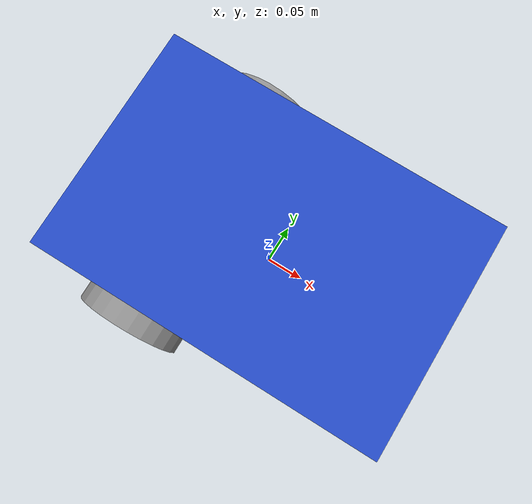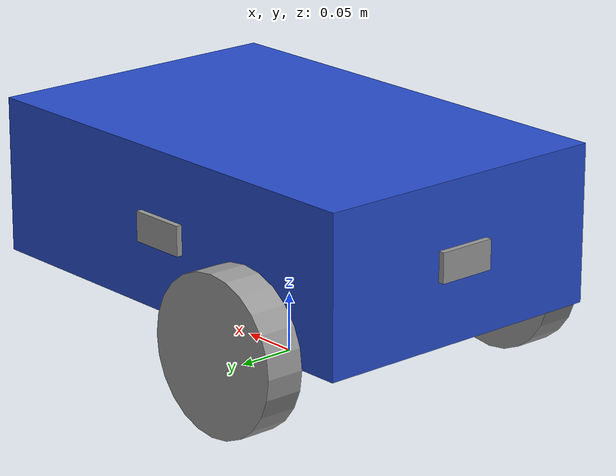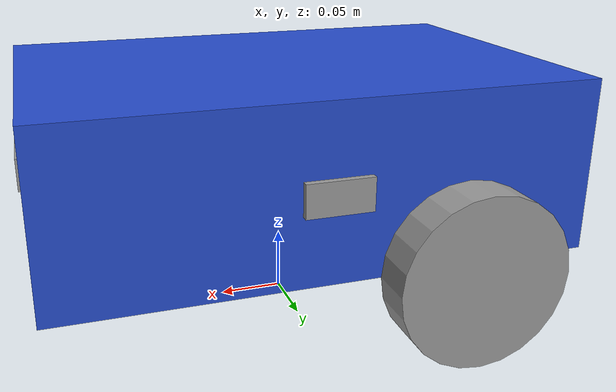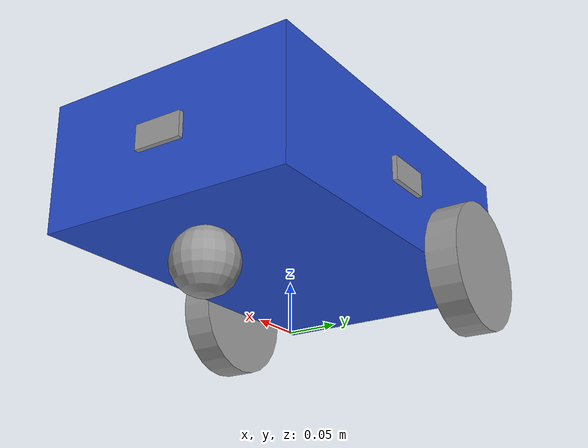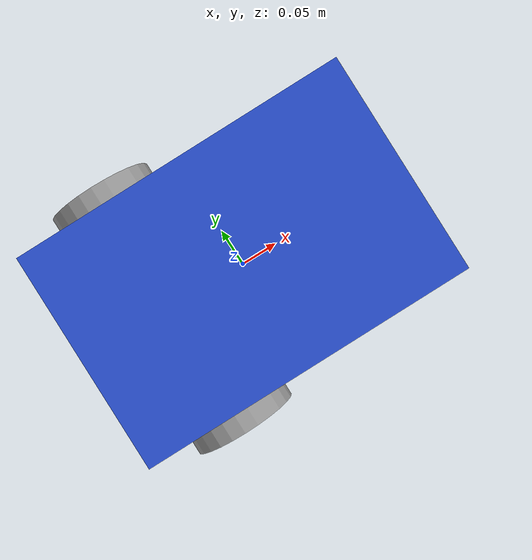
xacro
<?xml version="1.0"?>
<robot name="micro_mouse" xmlns:xacro="http://www.ros.org/wiki/xacro">

    <xacro:include filename="common_properties.xacro" />
    <xacro:include filename="mobile_base.xacro" />
    <xacro:include filename="mobile_base_gazebo.xacro" />
    <xacro:include filename="camera.xacro"/>
</robot>

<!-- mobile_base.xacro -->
<robot xmlns:xacro="http://www.ros.org/wiki/xacro">

    <xacro:property name="base_length" value="0.4"/>
    <xacro:property name="base_width" value="0.264"/>
    <xacro:property name="base_height" value="0.132"/>
    <xacro:property name="wheel_radius" value="0.066"/>
    <xacro:property name="wheel_length" value="0.033"/>

    <xacro:macro name="wheel_link" params="prefix">
        <link name="${prefix}_wheel_link">
            <visual>
                <geometry>
                    <cylinder radius="${wheel_radius}" length="${wheel_length}"/>
                </geometry>
                <origin xyz="0.0 0.0 0.0" rpy="0.0 0.0 0.0"/>
                <material name="grey"/>
            </visual>
            <collision>
                <geometry>
                    <cylinder radius="${wheel_radius}" length="${wheel_length}"/>
                </geometry>
                <origin xyz="0.0 0.0 0.0" rpy="0.0 0.0 0.0"/>
            </collision>
            <xacro:cylinder_inertia m="1.0" r="${2*wheel_radius}" h="${2*wheel_length}" xyz="0 0 0" rpy="0 0 0" />
        </link>
    </xacro:macro>

    <link name="base_foot_print"/>

    <joint name="base_foot_print_base_joint" type="fixed">
        <parent link="base_foot_print"/>
        <child link="base_link"/>
        <origin xyz="0.0 0.0 ${wheel_radius}" rpy="0.0 0.0 0.0"/>
    </joint>

    <link name="base_link">
        <visual>
            <geometry>
                <box size="${base_length} ${base_width} ${base_height}"/>
            </geometry>
            <origin xyz="0.0 0.0 ${base_height/2.0}" rpy="0.0 0.0 0.0"/>
            <material name='blue'/>
        </visual>
        <collision>
            <geometry>
                <box size="${base_length} ${base_width} ${base_height}"/>
            </geometry>
            <origin xyz="0.0 0.0 ${base_height/2.0}" rpy="0.0 0.0 0.0"/>
        </collision>
        <xacro:box_inertia m="5.0" l="${2*base_length}" w="${2*base_width}" h="${2*base_height}"
                            xyz="0.0 0.0 ${base_height/2.0}" rpy="0.0 0.0 0.0"/>
    </link>

    <xacro:wheel_link prefix="right"/>

    <joint name="base_right_wheel_joint" type="continuous">
        <parent link="base_link"/>
        <child link="right_wheel_link"/>
        <origin xyz="${-base_length/4} ${-base_width/2.0-wheel_length/2.0} 0" rpy="${3*pi / 2.0} 0 0"/>
        <axis xyz="0 0 1"/>

    </joint>

    <xacro:wheel_link prefix="left"/>

    <joint name="base_left_wheel_joint" type="continuous">
        <parent link="base_link"/>
        <child link="left_wheel_link"/>
        <origin xyz="${-base_length/4} ${base_width/2+wheel_length/2} 0" rpy="${3*pi / 2.0} 0 0"/>
        <axis xyz="0 0 1"/>

    </joint>

    <link name="caster_wheel_link">
        <visual>
            <geometry>
                <sphere radius="${wheel_radius/2.0}"/>
            </geometry>
            <origin xyz="0.0 0.0 0.0" rpy="0.0 0.0 0.0"/>
            <material name="grey"/>
        </visual>
        <collision>
            <geometry>
                <sphere radius="${wheel_radius/2.0}"/>
            </geometry>
            <origin xyz="0.0 0.0 0.0" rpy="0.0 0.0 0.0"/>
        </collision>
        <xacro:sphere_inertia m="0.5" r="${2*wheel_radius/2.0}" xyz="0.0 0.0 0.0" rpy="0.0 0.0 0.0" />
    </link>

    <joint name="base_caster_wheel_joint" type="fixed">
        <parent link="base_link"/>
        <child link="caster_wheel_link"/>
        <origin xyz="${base_length/3} 0.0 ${-wheel_radius/2}" rpy="0.0 0.0 0.0"/>
    </joint>
</robot>

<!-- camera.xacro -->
<robot xmlns:xacro="http://www.ros.org/wiki/xacro">

    <!-- Define properties for ultrasonic sensor dimensions -->
    <xacro:property name="ultrasound_length" value="0.005"/>
    <xacro:property name="ultrasound_width" value="0.05"/>
    <xacro:property name="ultrasound_height" value="0.025"/>

    <!-- Xacro macro to define an ultrasonic sensor -->
    <xacro:macro name="ultrasonic_sensor" params="sensor_name link_xyz link_rpy">
        <!-- Define the sensor link -->
        <link name="${sensor_name}_link">
            <visual>
                <geometry>
                    <box size="${ultrasound_length} ${ultrasound_width} ${ultrasound_height}"/>
                </geometry>
                <material name="grey"/>
            </visual>
            <collision>
                <geometry>
                    <box size="${ultrasound_length} ${ultrasound_width} ${ultrasound_height}"/>
                </geometry>
            </collision>
            <xacro:box_inertia m="0.1" l="${ultrasound_length}" w="${ultrasound_width}" h="${ultrasound_height}" xyz="0 0 0" rpy="0 0 0"/>
        </link>

        <!-- Define the joint attaching the sensor to the robot -->
        <joint name="base_${sensor_name}_joint" type="fixed">
            <parent link="base_link"/>  <!-- Change parent link if necessary -->
            <child link="${sensor_name}_link"/>
            <origin xyz="${link_xyz}" rpy="${link_rpy}"/>
        </joint>

        <!-- Gazebo plugin and sensor definition -->
        <gazebo reference="${sensor_name}_link">
            <material>Gazebo/Red</material>
            <sensor name="${sensor_name}" type="ray">
                <always_on>true</always_on>
                <visualize>true</visualize>
                <update_rate>5</update_rate>
                <ray>
                    <scan>
                        <horizontal>
                            <samples>5</samples>
                            <resolution>1.000000</resolution>
                            <min_angle>-0.12</min_angle>
                            <max_angle>0.12</max_angle>
                        </horizontal>
                        <vertical>
                            <samples>5</samples>
                            <resolution>1.000000</resolution>
                            <min_angle>-0.01</min_angle>
                            <max_angle>0.01</max_angle>
                        </vertical>
                    </scan>
                    <range>
                        <min>0.02</min>
                        <max>10</max>
                        <resolution>0.01</resolution>
                    </range>
                    <noise>
                        <type>gaussian</type>
                        <mean>0.0</mean>
                        <stddev>0.01</stddev>
                    </noise>
                </ray>
                <plugin name="${sensor_name}_sensor" filename="libgazebo_ros_ray_sensor.so">
                    <ros>
                        <remapping>~/out:=${sensor_name}_range</remapping>
                    </ros>
                    <output_type>sensor_msgs/Range</output_type>
                    <radiation_type>ultrasound</radiation_type>
                    <frame_name>${sensor_name}_link</frame_name>
                </plugin>
            </sensor>
        </gazebo>
    </xacro:macro>

    <!-- Instantiate the macro for each sensor (front, rear, left, right) -->

    <!-- Front ultrasonic sensor -->
    <xacro:ultrasonic_sensor sensor_name="front_ultrasonic_sensor" link_xyz="${base_length/2 + ultrasound_length/2.0} 0 ${base_height/2.0}" link_rpy="0 0 0"/>

    <!-- Rear ultrasonic sensor -->
    <xacro:ultrasonic_sensor sensor_name="rear_ultrasonic_sensor" link_xyz=" ${-base_length/2 - ultrasound_length/2.0} 0 ${base_height/2.0}" link_rpy="0 0 3.1415"/>

    <!-- Left ultrasonic sensor -->
    <xacro:ultrasonic_sensor sensor_name="left_ultrasonic_sensor" link_xyz="0 ${base_width/2.0 + ultrasound_length/2.0} ${base_height/2.0}" link_rpy="0 0 1.5708"/>

    <!-- Right ultrasonic sensor -->
    <xacro:ultrasonic_sensor sensor_name="right_ultrasonic_sensor" link_xyz="0 ${-base_width/2.0 - ultrasound_length/2.0} ${base_height/2.0}" link_rpy="0 0 -1.5708"/>

</robot>
